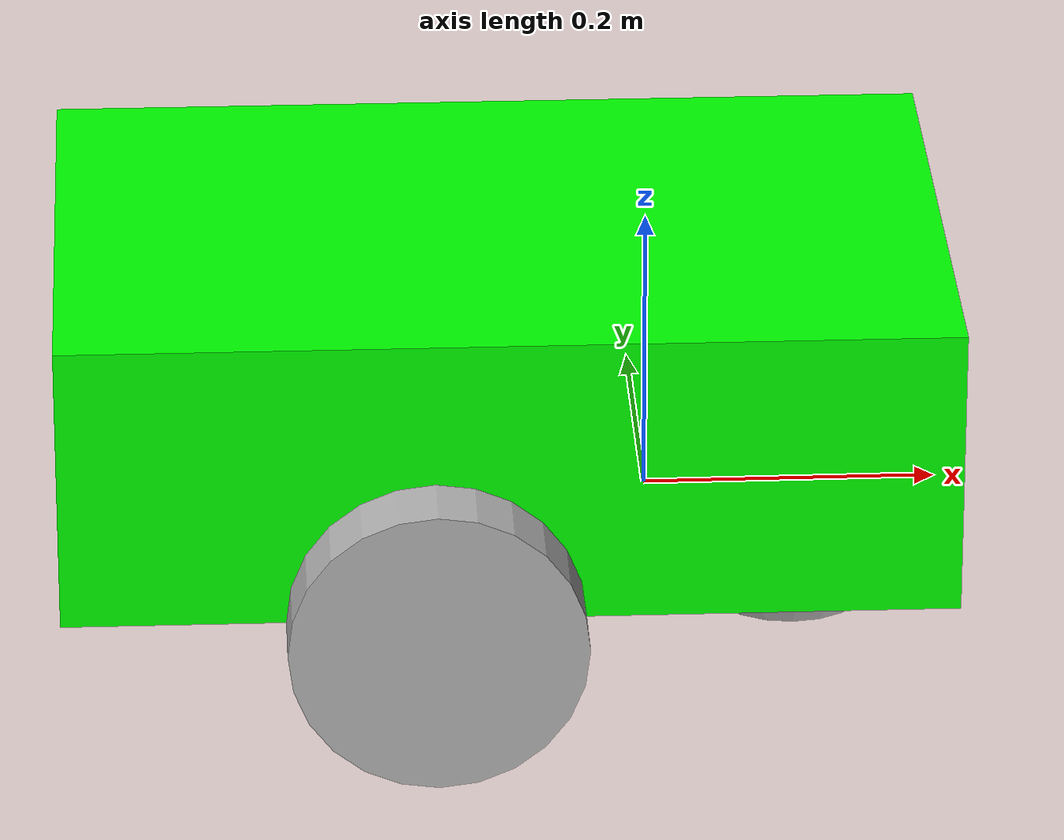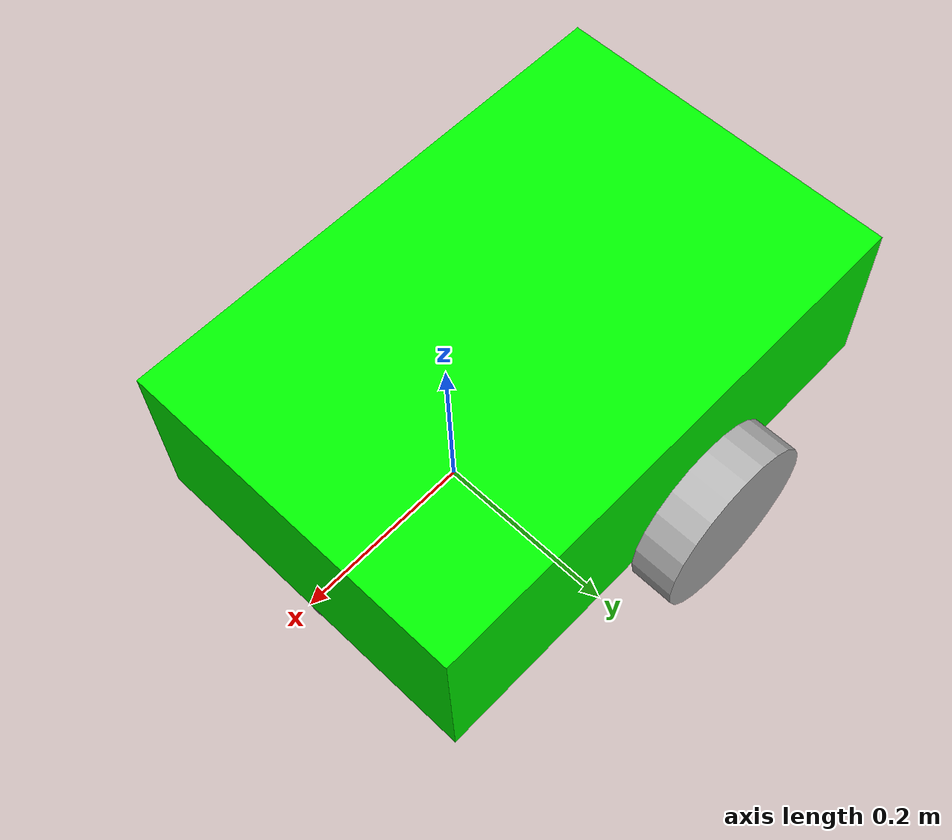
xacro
<?xml version="1.0"?>
<robot xmlns:xacro="http://www.ros.org/wiki/xacro" name="robot" >

    <xacro:include filename="robot_core.xacro" />

    <!-- CHOOSE BETWEEN ROBOT_CORE AND ROS2_CONTROL -->
    <xacro:include filename="gazebo_control.xacro" />

    <!-- CHOOSE BETWEEN CAMERA AND DEPTH AT FRONT POSITION -->

</robot>

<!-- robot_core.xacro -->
<robot xmlns:xacro="http://www.ros.org/wiki/xacro" >

    <xacro:include filename="inertial_macros.xacro" />

    <material name="blue">
        <color rgba="0 0 1 1" />
    </material>

    <material name="green">
        <color rgba="0 1 0 1" />
    </material>

    <material name="grey">
        <color rgba="0.7 0.7 0.7 1" />
    </material>

    <material name="black">
        <color rgba="0 0 0 1" />
    </material>

    <!-- BASE LINK -->
    <link name="base_link">

    </link>

    <!-- Chassis LINK -->
    <link name="chassis">
        <visual>
            <geometry>
                <box size="0.6 0.4 0.2" />
            </geometry>
            <origin xyz="0 0 0.1" rpy="0 0 0" />
            <material name="green" />
        </visual>
        <collision>
            <geometry>
                <box size="0.6 0.4 0.2" />
            </geometry>
            <origin xyz="0 0 0.1" rpy="0 0 0" />
        </collision>
        <xacro:inertial_box mass="0.5" x="0.6" y="0.4" z="0.2">
            <origin xyz="0 0 0.1" rpy="0 0 0" />
        </xacro:inertial_box>
    </link>

    <joint name="chassis_joint" type="fixed">
        <parent link="base_link" />
        <child link="chassis" />
        <origin xyz="-0.1 0 0" />
    </joint>

    <gazebo reference="base_link">
        <material>Gazebo/Green</material>
    </gazebo>

    <!-- LEFT WHEEL LINK -->
    <link name="left_wheel_link">
        <visual>
            <geometry>
                <cylinder radius="0.1" length="0.05" />
            </geometry>
            <origin xyz="0 0 0" rpy="1.57 0 0" />
            <material name="grey" />
        </visual>
        <collision>
            <geometry>
                <cylinder radius="0.1" length="0.05" />
            </geometry>
            <origin xyz="0 0 0" rpy="1.57 0 0" />
        </collision>
        <xacro:inertial_cylinder mass="0.1" radius="0.1" length="0.05" >
            <origin xyz="0 0 0" rpy="1.57 0 0" />
        </xacro:inertial_cylinder>
    </link>

    <joint name="base_left_wheel_joint" type="continuous">
        <parent link="base_link" />
        <child link="left_wheel_link" />
        <origin xyz="-0.15 0.225 0" rpy="0 0 0" />
        <axis xyz="0 1 0" />
    </joint>

    <gazebo reference="left_wheel_link">
        <material>Gazebo/Grey</material>
    </gazebo>

    <!-- RIGHT WHEEL LINK -->
    <link name="right_wheel_link">
        <visual>
            <geometry>
                <cylinder radius="0.1" length="0.05" />
            </geometry>
            <origin xyz="0 0 0" rpy="1.57 0 0" />
            <material name="grey" />
        </visual>
        <collision>
            <geometry>
                <cylinder radius="0.1" length="0.05" />
            </geometry>
            <origin xyz="0 0 0" rpy="1.57 0 0" />
        </collision>
        <xacro:inertial_cylinder mass="0.1" radius="0.1" length="0.05" >
            <origin xyz="0 0 0" rpy="1.57 0 0" />
        </xacro:inertial_cylinder>
    </link>

    <joint name="base_right_wheel_joint" type="continuous">
        <parent link="base_link" />
        <child link="right_wheel_link" />
        <origin xyz="-0.15 -0.225 0" rpy="0 0 0" />
        <axis xyz="0 1 0" />
    </joint>

    <gazebo reference="right_wheel_link">
        <material>Gazebo/Grey</material>
    </gazebo>

    <!-- CASTER WHEEL LINK -->
    <link name="caster_wheel_link">
        <visual>
            <geometry>
                <sphere radius="0.1" />
            </geometry>
            <origin xyz="0 0 0" rpy="0 0 0" />
            <material name="grey" />
        </visual>
        <collision>
            <geometry>
                <sphere radius="0.1" />
            </geometry>
            <origin xyz="0 0 0" rpy="0 0 0" />
        </collision>
        <xacro:inertial_sphere mass="0.1" radius="0.05">
            <origin xyz="0 0 0" rpy="0 0 0" />
        </xacro:inertial_sphere>
    </link>

    <joint name="base_caster_wheel_joint" type="fixed">
        <parent link="base_link"/>
        <child link="caster_wheel_link"/>
        <origin xyz="0.1 0 0" rpy="0 0 0"/>
    </joint>

    <gazebo reference="caster_wheel_link">
        <material>Gazebo/Grey</material>
        <mu1 value ="0.001"/>
        <mu2 value ="0.001"/>
    </gazebo>

</robot>
